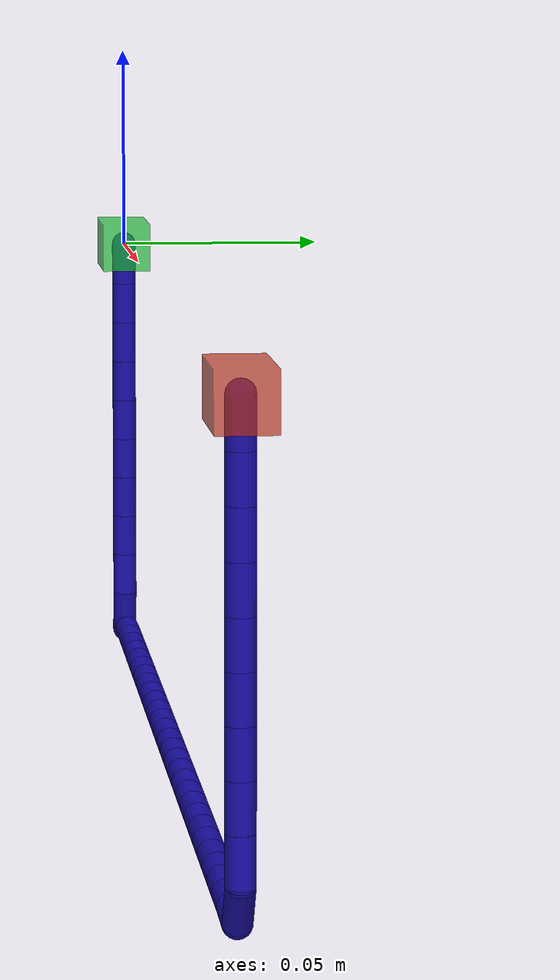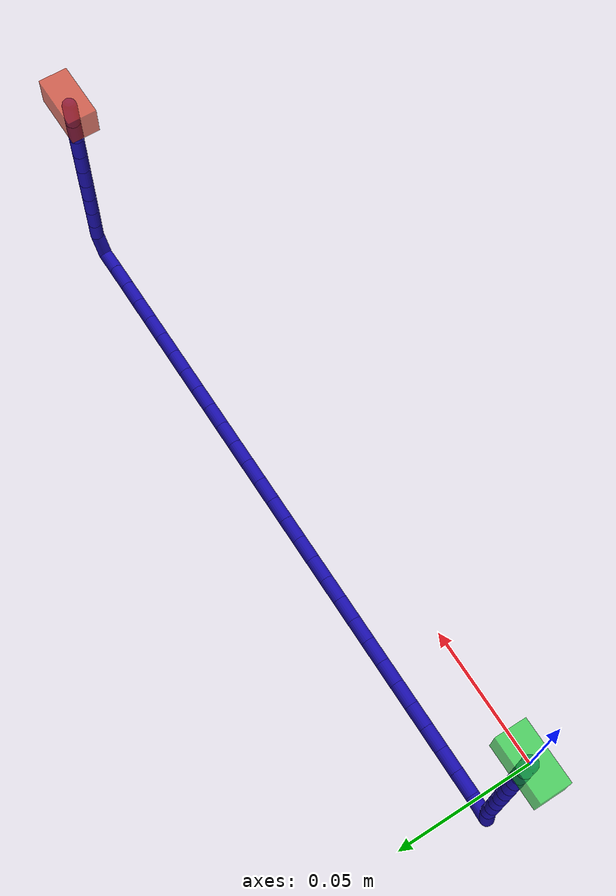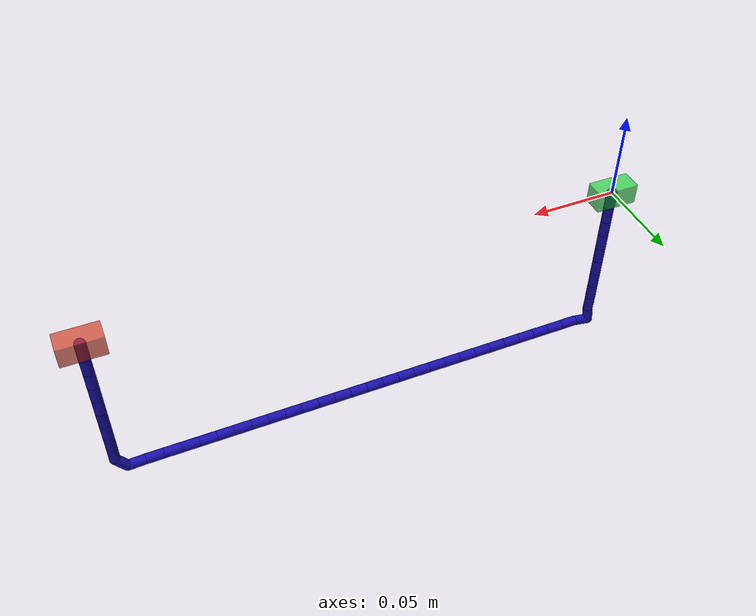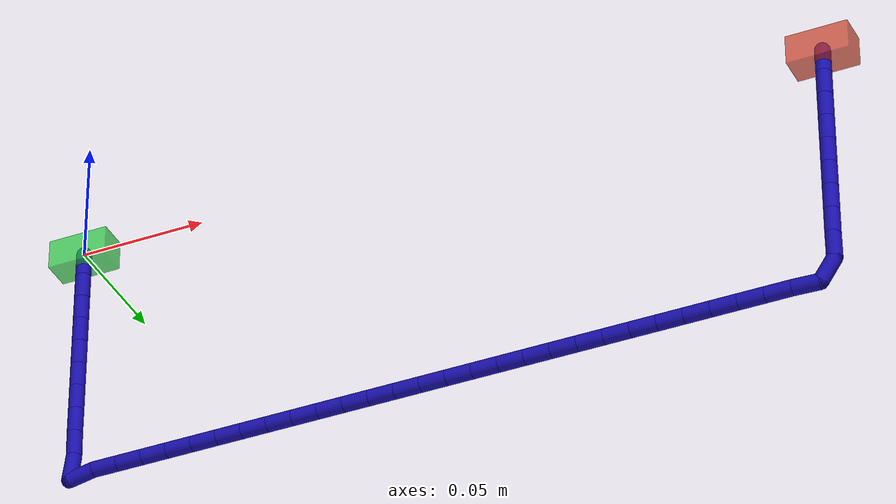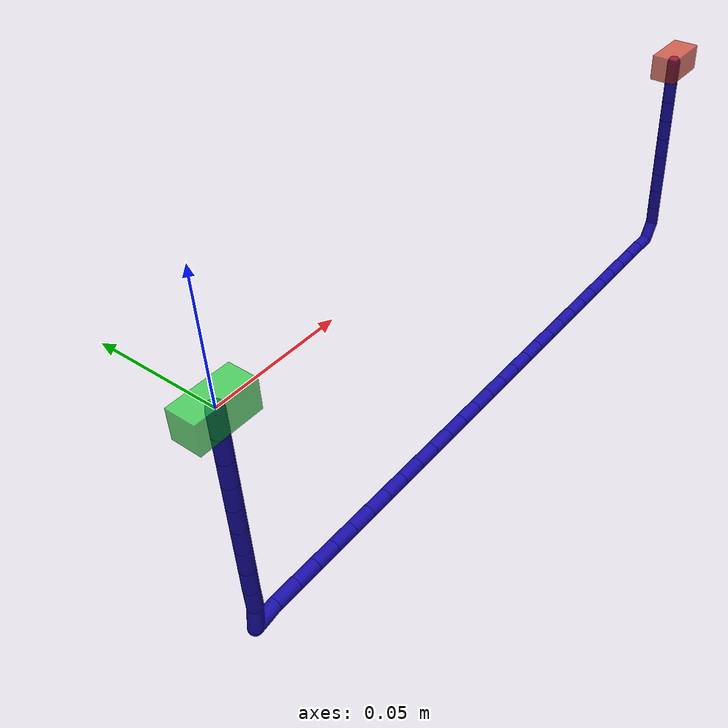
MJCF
<mujoco model="base">
  <compiler angle="radian"/>

  <option timestep="0.0015" tolerance="1e-10" integrator="RK4" cone="elliptic" jacobian="sparse" iterations="30"/>

  <size njmax="5000" nconmax="5000"/>

  <visual>
    <quality shadowsize="2048"/>
    <map stiffness="700" fogstart="10" fogend="15" znear="0.001" zfar="40" shadowscale="0.5"/>
    <rgba haze="0.15 0.25 0.35 1"/>
  </visual>

  <statistic meansize="0.05" extent="2"/>

  <extension>
    <plugin plugin="mujoco.elasticity.wire">
      <instance name="composite">
        <config key="twist" value="13747120.556278683"/>
        <config key="bend" value="18807015.9647687"/>
        <config key="flat" value="true"/>
        <config key="pqsActive" value="true"/>
        <config key="calcEnergy" value="true"/>
      </instance>
    </plugin>
  </extension>

  <asset>
    <texture type="skybox" builtin="gradient" rgb1="1 1 0.9" rgb2="0.9 0.9 0.81" width="512" height="3072"/>
    <texture type="2d" name="texplane" builtin="checker" mark="cross" rgb1="0.2 0.3 0.4" rgb2="0.1 0.15 0.2" markrgb="0.8 0.8 0.8" width="512" height="512"/>
    <material name="matplane" texture="texplane" texuniform="true" reflectance="0.3"/>
  </asset>

  <worldbody>
    <geom name="floor" size="3 3 0.125" pos="0 0 -10" type="plane" condim="1" material="matplane"/>
    <body name="eef_body2" quat="0.707107 0 0.707107 0">
      <geom name="eef_geom2" size="0.006 0.006 0.012" type="box" contype="0" conaffinity="0" mass="10" rgba="0.1 0.8 0.2 0.7"/>
      <site name="eef_body2_site" pos="0 0 0" size="0.01" group="2" rgba="0 0 0 0"/>
      <body name="eef_body2_sensor">
        <site name="sensor_site2" pos="0 0 0" size="0.01" group="2" rgba="0 0 0 0"/>
      </body>
    </body>
    <body name="eef_body" pos="0.3 0 0" quat="-0.707107 0 0.707107 0">
      <geom name="eef_geom" size="0.006 0.006 0.012" type="box" contype="0" conaffinity="0" mass="10" rgba="0.8 0.2 0.1 0.7"/>
      <site name="eef_body_site" pos="0 0 0" size="0.01" group="1" rgba="0 0 0 0"/>
      <body name="eef_body_sensor">
        <site name="sensor_site1" pos="0 0 0" size="0.01" group="1" rgba="0 0 0 0"/>
      </body>
    </body>
    <body name="stiffrope">
      <joint name="freejoint_A" type="free" limited="false" actuatorfrclimited="false"/>
      <body name="B_first" quat="0.707107 0 0.707107 0">
        <geom name="G0" size="0.003 0.00510204" pos="0.00510204 0 0" quat="0.707107 0 -0.707107 0" type="capsule" conaffinity="0" condim="1" solref="0.001" mass="10" rgba="0.1 0.0533333 0.673333 1"/>
        <plugin instance="composite"/>
        <body name="B_1" pos="0.0102041 0 0">
          <joint name="J_1" pos="0 0 0" type="ball" group="3" actuatorfrclimited="false" damping="0.002"/>
          <geom name="G1" size="0.003 0.00510204" pos="0.00510204 0 0" quat="0.707107 0 -0.707107 0" type="capsule" conaffinity="0" condim="1" solref="0.001" mass="0.000270554" rgba="0.1 0.0533333 0.673333 1"/>
          <plugin instance="composite"/>
          <body name="B_2" pos="0.0102041 0 -7.86276e-11" quat="1 0 -2.8856e-08 0">
            <joint name="J_2" pos="0 0 0" type="ball" group="3" actuatorfrclimited="false" damping="0.002"/>
            <geom name="G2" size="0.003 0.00510204" pos="0.00510204 0 0" quat="0.707107 0 -0.707107 0" type="capsule" conaffinity="0" condim="1" solref="0.001" mass="0.000270554" rgba="0.1 0.0533333 0.673333 1"/>
            <plugin instance="composite"/>
            <body name="B_3" pos="0.0102041 0 -1.50896e-11" quat="1 0 2.62256e-07 0">
              <joint name="J_3" pos="0 0 0" type="ball" group="3" actuatorfrclimited="false" damping="0.002"/>
              <geom name="G3" size="0.003 0.00510204" pos="0.00510204 0 0" quat="0.707107 0 -0.707107 0" type="capsule" conaffinity="0" condim="1" solref="0.001" mass="0.000270554" rgba="0.1 0.0533333 0.673333 1"/>
              <plugin instance="composite"/>
              <body name="B_4" pos="0.0102041 0 1.48594e-12" quat="1 0 -2.13771e-06 0">
                <joint name="J_4" pos="0 0 0" type="ball" group="3" actuatorfrclimited="false" damping="0.002"/>
                <geom name="G4" size="0.003 0.00510204" pos="0.00510204 0 0" quat="0.707107 0 -0.707107 0" type="capsule" conaffinity="0" condim="1" solref="0.001" mass="0.000270554" rgba="0.1 0.0533333 0.673333 1"/>
                <plugin instance="composite"/>
                <body name="B_5" pos="0.0102041 0 0" quat="1 0 1.74777e-05 0">
                  <joint name="J_5" pos="0 0 0" type="ball" group="3" actuatorfrclimited="false" damping="0.002"/>
                  <geom name="G5" size="0.003 0.00510204" pos="0.00510204 0 0" quat="0.707107 0 -0.707107 0" type="capsule" conaffinity="0" condim="1" solref="0.001" mass="0.000270554" rgba="0.1 0.0533333 0.673333 1"/>
                  <plugin instance="composite"/>
                  <body name="B_6" pos="0.0102041 0 0" quat="1 0 -0.000142902 0">
                    <joint name="J_6" pos="0 0 0" type="ball" group="3" actuatorfrclimited="false" damping="0.002"/>
                    <geom name="G6" size="0.003 0.00510204" pos="0.00510204 0 0" quat="0.707107 0 -0.707107 0" type="capsule" conaffinity="0" condim="1" solref="0.001" mass="0.000270554" rgba="0.1 0.0533333 0.673333 1"/>
                    <plugin instance="composite"/>
                    <body name="B_7" pos="0.0102041 0 0" quat="0.999999 0 0.0011684 0">
                      <joint name="J_7" pos="0 0 0" type="ball" group="3" actuatorfrclimited="false" damping="0.002"/>
                      <geom name="G7" size="0.003 0.00510204" pos="0.00510204 0 0" quat="0.707107 0 -0.707107 0" type="capsule" conaffinity="0" condim="1" solref="0.001" mass="0.000270554" rgba="0.1 0.0533333 0.673333 1"/>
                      <plugin instance="composite"/>
                      <body name="B_8" pos="0.0102041 0 0" quat="0.999954 0 -0.00955134 0">
                        <joint name="J_8" pos="0 0 0" type="ball" group="3" actuatorfrclimited="false" damping="0.002"/>
                        <geom name="G8" size="0.003 0.00510204" pos="0.00510204 0 0" quat="0.707107 0 -0.707107 0" type="capsule" conaffinity="0" condim="1" solref="0.001" mass="0.000270554" rgba="0.1 0.0533333 0.673333 1"/>
                        <plugin instance="composite"/>
                        <body name="B_9" pos="0.0102041 0 0" quat="0.996971 0 0.0777708 0">
                          <joint name="J_9" pos="0 0 0" type="ball" group="3" actuatorfrclimited="false" damping="0.002"/>
                          <geom name="G9" size="0.003 0.00510204" pos="0.00510204 0 0" quat="0.707107 0 -0.707107 0" type="capsule" conaffinity="0" condim="1" solref="0.001" mass="0.000270554" rgba="0.1 0.0533333 0.673333 1"/>
                          <plugin instance="composite"/>
                          <body name="B_10" pos="0.0102041 0 0" quat="0.580421 0 -0.814316 0">
                            <joint name="J_10" pos="0 0 0" type="ball" group="3" actuatorfrclimited="false" damping="0.002"/>
                            <geom name="G10" size="0.003 0.00510204" pos="0.00510204 0 0" quat="0.707107 0 -0.707107 0" type="capsule" conaffinity="0" condim="1" solref="0.001" mass="0.000270554" rgba="0.1 0.0533333 0.673333 1"/>
                            <plugin instance="composite"/>
                            <body name="B_11" pos="0.0102041 0 0" quat="0.995197 0 0.0978941 0">
                              <joint name="J_11" pos="0 0 0" type="ball" group="3" actuatorfrclimited="false" damping="0.002"/>
                              <geom name="G11" size="0.003 0.00510204" pos="0.00510204 0 0" quat="0.707107 0 -0.707107 0" type="capsule" conaffinity="0" condim="1" solref="0.001" mass="0.000270554" rgba="0.1 0.0533333 0.673333 1"/>
                              <plugin instance="composite"/>
                              <body name="B_12" pos="0.0102041 0 0" quat="0.999999 0 -0.0014001 0">
                                <joint name="J_12" pos="0 0 0" type="ball" group="3" actuatorfrclimited="false" damping="0.002"/>
                                <geom name="G12" size="0.003 0.00510204" pos="0.00510204 0 0" quat="0.707107 0 -0.707107 0" type="capsule" conaffinity="0" condim="1" solref="0.001" mass="0.000270554" rgba="0.1 0.0533333 0.673333 1"/>
                                <plugin instance="composite"/>
                                <body name="B_13" pos="0.0102041 0 0" quat="1 0 0.000169274 0">
                                  <joint name="J_13" pos="0 0 0" type="ball" group="3" actuatorfrclimited="false" damping="0.002"/>
                                  <geom name="G13" size="0.003 0.00510204" pos="0.00510204 0 0" quat="0.707107 0 -0.707107 0" type="capsule" conaffinity="0" condim="1" solref="0.001" mass="0.000270554" rgba="0.1 0.0533333 0.673333 1"/>
                                  <plugin instance="composite"/>
                                  <body name="B_14" pos="0.0102041 0 0" quat="1 0 -7.74227e-06 0">
                                    <joint name="J_14" pos="0 0 0" type="ball" group="3" actuatorfrclimited="false" damping="0.002"/>
                                    <geom name="G14" size="0.003 0.00510204" pos="0.00510204 0 0" quat="0.707107 0 -0.707107 0" type="capsule" conaffinity="0" condim="1" solref="0.001" mass="0.000270554" rgba="0.1 0.0533333 0.673333 1"/>
                                    <plugin instance="composite"/>
                                    <body name="B_15" pos="0.0102041 0 0" quat="1 0 4.80259e-07 0">
                                      <joint name="J_15" pos="0 0 0" type="ball" group="3" actuatorfrclimited="false" damping="0.002"/>
                                      <geom name="G15" size="0.003 0.00510204" pos="0.00510204 0 0" quat="0.707107 0 -0.707107 0" type="capsule" conaffinity="0" condim="1" solref="0.001" mass="0.000270554" rgba="0.1 0.0533333 0.673333 1"/>
                                      <plugin instance="composite"/>
                                      <body name="B_16" pos="0.0102041 0 0" quat="1 0 -2.68635e-08 0">
                                        <joint name="J_16" pos="0 0 0" type="ball" group="3" actuatorfrclimited="false" damping="0.002"/>
                                        <geom name="G16" size="0.003 0.00510204" pos="0.00510204 0 0" quat="0.707107 0 -0.707107 0" type="capsule" conaffinity="0" condim="1" solref="0.001" mass="0.000270554" rgba="0.1 0.0533333 0.673333 1"/>
                                        <plugin instance="composite"/>
                                        <body name="B_17" pos="0.0102041 0 -7.99963e-12">
                                          <joint name="J_17" pos="0 0 0" type="ball" group="3" actuatorfrclimited="false" damping="0.002"/>
                                          <geom name="G17" size="0.003 0.00510204" pos="0.00510204 0 0" quat="0.707107 0 -0.707107 0" type="capsule" conaffinity="0" condim="1" solref="0.001" mass="0.000270554" rgba="0.1 0.0533333 0.673333 1"/>
                                          <plugin instance="composite"/>
                                          <body name="B_18" pos="0.0102041 0 -3.91124e-11">
                                            <joint name="J_18" pos="0 0 0" type="ball" group="3" actuatorfrclimited="false" damping="0.002"/>
                                            <geom name="G18" size="0.003 0.00510204" pos="0.00510204 0 0" quat="0.707107 0 -0.707107 0" type="capsule" conaffinity="0" condim="1" solref="0.001" mass="0.000270554" rgba="0.1 0.0533333 0.673333 1"/>
                                            <plugin instance="composite"/>
                                            <body name="B_19" pos="0.0102041 0 -3.73499e-11">
                                              <joint name="J_19" pos="0 0 0" type="ball" group="3" actuatorfrclimited="false" damping="0.002"/>
                                              <geom name="G19" size="0.003 0.00510204" pos="0.00510204 0 0" quat="0.707107 0 -0.707107 0" type="capsule" conaffinity="0" condim="1" solref="0.001" mass="0.000270554" rgba="0.1 0.0533333 0.673333 1"/>
                                              <plugin instance="composite"/>
                                              <body name="B_20" pos="0.0102041 0 -3.74503e-11">
                                                <joint name="J_20" pos="0 0 0" type="ball" group="3" actuatorfrclimited="false" damping="0.002"/>
                                                <geom name="G20" size="0.003 0.00510204" pos="0.00510204 0 0" quat="0.707107 0 -0.707107 0" type="capsule" conaffinity="0" condim="1" solref="0.001" mass="0.000270554" rgba="0.1 0.0533333 0.673333 1"/>
                                                <plugin instance="composite"/>
                                                <body name="B_21" pos="0.0102041 0 -3.74446e-11">
                                                  <joint name="J_21" pos="0 0 0" type="ball" group="3" actuatorfrclimited="false" damping="0.002"/>
                                                  <geom name="G21" size="0.003 0.00510204" pos="0.00510204 0 0" quat="0.707107 0 -0.707107 0" type="capsule" conaffinity="0" condim="1" solref="0.001" mass="0.000270554" rgba="0.1 0.0533333 0.673333 1"/>
                                                  <plugin instance="composite"/>
                                                  <body name="B_22" pos="0.0102041 0 -3.74449e-11">
                                                    <joint name="J_22" pos="0 0 0" type="ball" group="3" actuatorfrclimited="false" damping="0.002"/>
                                                    <geom name="G22" size="0.003 0.00510204" pos="0.00510204 0 0" quat="0.707107 0 -0.707107 0" type="capsule" conaffinity="0" condim="1" solref="0.001" mass="0.000270554" rgba="0.1 0.0533333 0.673333 1"/>
                                                    <plugin instance="composite"/>
                                                    <body name="B_23" pos="0.0102041 0 -3.74449e-11">
                                                      <joint name="J_23" pos="0 0 0" type="ball" group="3" actuatorfrclimited="false" damping="0.002"/>
                                                      <geom name="G23" size="0.003 0.00510204" pos="0.00510204 0 0" quat="0.707107 0 -0.707107 0" type="capsule" conaffinity="0" condim="1" solref="0.001" mass="0.000270554" rgba="0.1 0.0533333 0.673333 1"/>
                                                      <plugin instance="composite"/>
                                                      <body name="B_24" pos="0.0102041 0 -3.74449e-11">
                                                        <joint name="J_24" pos="0 0 0" type="ball" group="3" actuatorfrclimited="false" damping="0.002"/>
                                                        <geom name="G24" size="0.003 0.00510204" pos="0.00510204 0 0" quat="0.707107 0 -0.707107 0" type="capsule" conaffinity="0" condim="1" solref="0.001" mass="0.000270554" rgba="0.1 0.0533333 0.673333 1"/>
                                                        <plugin instance="composite"/>
                                                        <body name="B_25" pos="0.0102041 0 -3.74449e-11">
                                                          <joint name="J_25" pos="0 0 0" type="ball" group="3" actuatorfrclimited="false" damping="0.002"/>
                                                          <geom name="G25" size="0.003 0.00510204" pos="0.00510204 0 0" quat="0.707107 0 -0.707107 0" type="capsule" conaffinity="0" condim="1" solref="0.001" mass="0.000270554" rgba="0.1 0.0533333 0.673333 1"/>
                                                          <plugin instance="composite"/>
                                                          <body name="B_26" pos="0.0102041 0 -3.74449e-11">
                                                            <joint name="J_26" pos="0 0 0" type="ball" group="3" actuatorfrclimited="false" damping="0.002"/>
                                                            <geom name="G26" size="0.003 0.00510204" pos="0.00510204 0 0" quat="0.707107 0 -0.707107 0" type="capsule" conaffinity="0" condim="1" solref="0.001" mass="0.000270554" rgba="0.1 0.0533333 0.673333 1"/>
                                                            <plugin instance="composite"/>
                                                            <body name="B_27" pos="0.0102041 0 -3.74449e-11">
                                                              <joint name="J_27" pos="0 0 0" type="ball" group="3" actuatorfrclimited="false" damping="0.002"/>
                                                              <geom name="G27" size="0.003 0.00510204" pos="0.00510204 0 0" quat="0.707107 0 -0.707107 0" type="capsule" conaffinity="0" condim="1" solref="0.001" mass="0.000270554" rgba="0.1 0.0533333 0.673333 1"/>
                                                              <plugin instance="composite"/>
                                                              <body name="B_28" pos="0.0102041 0 -3.74449e-11">
                                                                <joint name="J_28" pos="0 0 0" type="ball" group="3" actuatorfrclimited="false" damping="0.002"/>
                                                                <geom name="G28" size="0.003 0.00510204" pos="0.00510204 0 0" quat="0.707107 0 -0.707107 0" type="capsule" conaffinity="0" condim="1" solref="0.001" mass="0.000270554" rgba="0.1 0.0533333 0.673333 1"/>
                                                                <plugin instance="composite"/>
                                                                <body name="B_29" pos="0.0102041 0 -3.7445e-11">
                                                                  <joint name="J_29" pos="0 0 0" type="ball" group="3" actuatorfrclimited="false" damping="0.002"/>
                                                                  <geom name="G29" size="0.003 0.00510204" pos="0.00510204 0 0" quat="0.707107 0 -0.707107 0" type="capsule" conaffinity="0" condim="1" solref="0.001" mass="0.000270554" rgba="0.1 0.0533333 0.673333 1"/>
                                                                  <plugin instance="composite"/>
                                                                  <body name="B_30" pos="0.0102041 0 -3.74449e-11">
                                                                    <joint name="J_30" pos="0 0 0" type="ball" group="3" actuatorfrclimited="false" damping="0.002"/>
                                                                    <geom name="G30" size="0.003 0.00510204" pos="0.00510204 0 0" quat="0.707107 0 -0.707107 0" type="capsule" conaffinity="0" condim="1" solref="0.001" mass="0.000270554" rgba="0.1 0.0533333 0.673333 1"/>
                                                                    <plugin instance="composite"/>
                                                                    <body name="B_31" pos="0.0102041 0 -3.74451e-11">
                                                                      <joint name="J_31" pos="0 0 0" type="ball" group="3" actuatorfrclimited="false" damping="0.002"/>
                                                                      <geom name="G31" size="0.003 0.00510204" pos="0.00510204 0 0" quat="0.707107 0 -0.707107 0" type="capsule" conaffinity="0" condim="1" solref="0.001" mass="0.000270554" rgba="0.1 0.0533333 0.673333 1"/>
                                                                      <plugin instance="composite"/>
                                                                      <body name="B_32" pos="0.0102041 0 -3.74408e-11">
                                                                        <joint name="J_32" pos="0 0 0" type="ball" group="3" actuatorfrclimited="false" damping="0.002"/>
                                                                        <geom name="G32" size="0.003 0.00510204" pos="0.00510204 0 0" quat="0.707107 0 -0.707107 0" type="capsule" conaffinity="0" condim="1" solref="0.001" mass="0.000270554" rgba="0.1 0.0533333 0.673333 1"/>
                                                                        <plugin instance="composite"/>
                                                                        <body name="B_33" pos="0.0102041 0 -3.76006e-11">
                                                                          <joint name="J_33" pos="0 0 0" type="ball" group="3" actuatorfrclimited="false" damping="0.002"/>
                                                                          <geom name="G33" size="0.003 0.00510204" pos="0.00510204 0 0" quat="0.707107 0 -0.707107 0" type="capsule" conaffinity="0" condim="1" solref="0.001" mass="0.000270554" rgba="0.1 0.0533333 0.673333 1"/>
                                                                          <plugin instance="composite"/>
                                                                          <body name="B_34" pos="0.0102041 0 -3.16078e-11" quat="1 0 1.49012e-08 0">
                                                                            <joint name="J_34" pos="0 0 0" type="ball" group="3" actuatorfrclimited="false" damping="0.002"/>
                                                                            <geom name="G34" size="0.003 0.00510204" pos="0.00510204 0 0" quat="0.707107 0 -0.707107 0" type="capsule" conaffinity="0" condim="1" solref="0.001" mass="0.000270554" rgba="0.1 0.0533333 0.673333 1"/>
                                                                            <plugin instance="composite"/>
                                                                            <body name="B_35" pos="0.0102041 0 4.77704e-11" quat="1 0 -4.15232e-07 0">
                                                                              <joint name="J_35" pos="0 0 0" type="ball" group="3" actuatorfrclimited="false" damping="0.002"/>
                                                                              <geom name="G35" size="0.003 0.00510204" pos="0.00510204 0 0" quat="0.707107 0 -0.707107 0" type="capsule" conaffinity="0" condim="1" solref="0.001" mass="0.000270554" rgba="0.1 0.0533333 0.673333 1"/>
                                                                              <plugin instance="composite"/>
                                                                              <body name="B_36" pos="0.0102041 0 0" quat="1 0 1.54783e-05 0">
                                                                                <joint name="J_36" pos="0 0 0" type="ball" group="3" actuatorfrclimited="false" damping="0.002"/>
                                                                                <geom name="G36" size="0.003 0.00510204" pos="0.00510204 0 0" quat="0.707107 0 -0.707107 0" type="capsule" conaffinity="0" condim="1" solref="0.001" mass="0.000270554" rgba="0.1 0.0533333 0.673333 1"/>
                                                                                <plugin instance="composite"/>
                                                                                <body name="B_37" pos="0.0102041 0 0" quat="1 0 -0.000579534 0">
                                                                                  <joint name="J_37" pos="0 0 0" type="ball" group="3" actuatorfrclimited="false" damping="0.002"/>
                                                                                  <geom name="G37" size="0.003 0.00510204" pos="0.00510204 0 0" quat="0.707107 0 -0.707107 0" type="capsule" conaffinity="0" condim="1" solref="0.001" mass="0.000270554" rgba="0.1 0.0533333 0.673333 1"/>
                                                                                  <plugin instance="composite"/>
                                                                                  <body name="B_38" pos="0.0102041 0 0" quat="0.999767 0 0.0215755 0">
                                                                                    <joint name="J_38" pos="0 0 0" type="ball" group="3" actuatorfrclimited="false" damping="0.002"/>
                                                                                    <geom name="G38" size="0.003 0.00510204" pos="0.00510204 0 0" quat="0.707107 0 -0.707107 0" type="capsule" conaffinity="0" condim="1" solref="0.001" mass="0.000270554" rgba="0.1 0.0533333 0.673333 1"/>
                                                                                    <plugin instance="composite"/>
                                                                                    <body name="B_39" pos="0.0102041 0 0" quat="0.871104 0 -0.491098 0">
                                                                                      <joint name="J_39" pos="0 0 0" type="ball" group="3" actuatorfrclimited="false" damping="0.002"/>
                                                                                      <geom name="G39" size="0.003 0.00510204" pos="0.00510204 0 0" quat="0.707107 0 -0.707107 0" type="capsule" conaffinity="0" condim="1" solref="0.001" mass="0.000270554" rgba="0.1 0.0533333 0.673333 1"/>
                                                                                      <plugin instance="composite"/>
                                                                                      <body name="B_40" pos="0.0102041 0 0" quat="-0.955738 0 0.29422 0">
                                                                                        <joint name="J_40" pos="0 0 0" type="ball" group="3" actuatorfrclimited="false" damping="0.002"/>
                                                                                        <geom name="G40" size="0.003 0.00510204" pos="0.00510204 0 0" quat="0.707107 0 -0.707107 0" type="capsule" conaffinity="0" condim="1" solref="0.001" mass="0.000270554" rgba="0.1 0.0533333 0.673333 1"/>
                                                                                        <plugin instance="composite"/>
                                                                                        <body name="B_41" pos="0.0102041 0 0" quat="-0.999982 0 -0.0059275 0">
                                                                                          <joint name="J_41" pos="0 0 0" type="ball" group="3" actuatorfrclimited="false" damping="0.002"/>
                                                                                          <geom name="G41" size="0.003 0.00510204" pos="0.00510204 0 0" quat="0.707107 0 -0.707107 0" type="capsule" conaffinity="0" condim="1" solref="0.001" mass="0.000270554" rgba="0.1 0.0533333 0.673333 1"/>
                                                                                          <plugin instance="composite"/>
                                                                                          <body name="B_42" pos="0.0102041 0 0" quat="-1 0 0.000364068 0">
                                                                                            <joint name="J_42" pos="0 0 0" type="ball" group="3" actuatorfrclimited="false" damping="0.002"/>
                                                                                            <geom name="G42" size="0.003 0.00510204" pos="0.00510204 0 0" quat="0.707107 0 -0.707107 0" type="capsule" conaffinity="0" condim="1" solref="0.001" mass="0.000270554" rgba="0.1 0.0533333 0.673333 1"/>
                                                                                            <plugin instance="composite"/>
                                                                                            <body name="B_43" pos="0.0102041 0 0" quat="-1 0 -1.63716e-05 0">
                                                                                              <joint name="J_43" pos="0 0 0" type="ball" group="3" actuatorfrclimited="false" damping="0.002"/>
                                                                                              <geom name="G43" size="0.003 0.00510204" pos="0.00510204 0 0" quat="0.707107 0 -0.707107 0" type="capsule" conaffinity="0" condim="1" solref="0.001" mass="0.000270554" rgba="0.1 0.0533333 0.673333 1"/>
                                                                                              <plugin instance="composite"/>
                                                                                              <body name="B_44" pos="0.0102041 0 0" quat="-1 0 7.75004e-07 0">
                                                                                                <joint name="J_44" pos="0 0 0" type="ball" group="3" actuatorfrclimited="false" damping="0.002"/>
                                                                                                <geom name="G44" size="0.003 0.00510204" pos="0.00510204 0 0" quat="0.707107 0 -0.707107 0" type="capsule" conaffinity="0" condim="1" solref="0.001" mass="0.000270554" rgba="0.1 0.0533333 0.673333 1"/>
                                                                                                <plugin instance="composite"/>
                                                                                                <body name="B_45" pos="0.0102041 0 2.39326e-12" quat="1 0 3.41428e-08 0">
                                                                                                  <joint name="J_45" pos="0 0 0" type="ball" group="3" actuatorfrclimited="false" damping="0.002"/>
                                                                                                  <geom name="G45" size="0.003 0.00510204" pos="0.00510204 0 0" quat="0.707107 0 -0.707107 0" type="capsule" conaffinity="0" condim="1" solref="0.001" mass="0.000270554" rgba="0.1 0.0533333 0.673333 1"/>
                                                                                                  <plugin instance="composite"/>
                                                                                                  <body name="B_46" pos="0.0102041 0 -4.27212e-11">
                                                                                                    <joint name="J_46" pos="0 0 0" type="ball" group="3" actuatorfrclimited="false" damping="0.002"/>
                                                                                                    <geom name="G46" size="0.003 0.00510204" pos="0.00510204 0 0" quat="0.707107 0 -0.707107 0" type="capsule" conaffinity="0" condim="1" solref="0.001" mass="0.000270554" rgba="0.1 0.0533333 0.673333 1"/>
                                                                                                    <plugin instance="composite"/>
                                                                                                    <body name="B_47" pos="0.0102041 0 -7.86631e-12">
                                                                                                      <joint name="J_47" pos="0 0 0" type="ball" group="3" actuatorfrclimited="false" damping="0.002"/>
                                                                                                      <geom name="G47" size="0.003 0.00510204" pos="0.00510204 0 0" quat="0.707107 0 -0.707107 0" type="capsule" conaffinity="0" condim="1" solref="0.001" mass="0.000270554" rgba="0.1 0.0533333 0.673333 1"/>
                                                                                                      <plugin instance="composite"/>
                                                                                                      <body name="B_last" pos="0.0102041 0 -9.50345e-12">
                                                                                                        <joint name="J_last" pos="0 0 0" type="ball" group="3" actuatorfrclimited="false" damping="0.002"/>
                                                                                                        <geom name="G48" size="0.003 0.00514226" pos="0.00514226 0 0" quat="0.707107 0 -0.707107 0" type="capsule" conaffinity="0" condim="1" solref="0.001" mass="10" rgba="0.1 0.0533333 0.673333 1"/>
                                                                                                        <plugin instance="composite"/>
                                                                                                        <body name="B_last2" pos="0.0102845 0 -9.5009e-12">
                                                                                                          <plugin instance="composite"/>
                                                                                                        </body>
                                                                                                      </body>
                                                                                                    </body>
                                                                                                  </body>
                                                                                                </body>
                                                                                              </body>
                                                                                            </body>
                                                                                          </body>
                                                                                        </body>
                                                                                      </body>
                                                                                    </body>
                                                                                  </body>
                                                                                </body>
                                                                              </body>
                                                                            </body>
                                                                          </body>
                                                                        </body>
                                                                      </body>
                                                                    </body>
                                                                  </body>
                                                                </body>
                                                              </body>
                                                            </body>
                                                          </body>
                                                        </body>
                                                      </body>
                                                    </body>
                                                  </body>
                                                </body>
                                              </body>
                                            </body>
                                          </body>
                                        </body>
                                      </body>
                                    </body>
                                  </body>
                                </body>
                              </body>
                            </body>
                          </body>
                        </body>
                      </body>
                    </body>
                  </body>
                </body>
              </body>
            </body>
          </body>
        </body>
      </body>
    </body>
  </worldbody>

  <equality>
    <weld name="weld_end" body1="B_last" body2="eef_body_sensor" anchor="0 0 0" relpose="0.0102845 0 -9.50041e-12 1 0 0 0" torquescale="1" solref="0.001"/>
    <weld name="weld_start" body1="B_first" body2="eef_body2_sensor" anchor="0 0 0" relpose="0 0 0 1 0 0 0" torquescale="1" solref="0.001"/>
  </equality>

  <sensor>
    <torque site="sensor_site1" name="torque_A"/>
    <force site="sensor_site1" name="force_A"/>
    <torque site="sensor_site2" name="torque_B"/>
    <force site="sensor_site2" name="force_B"/>
  </sensor>
</mujoco>
